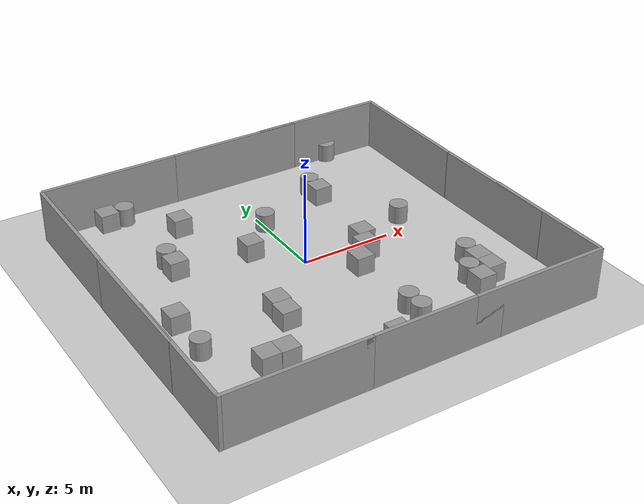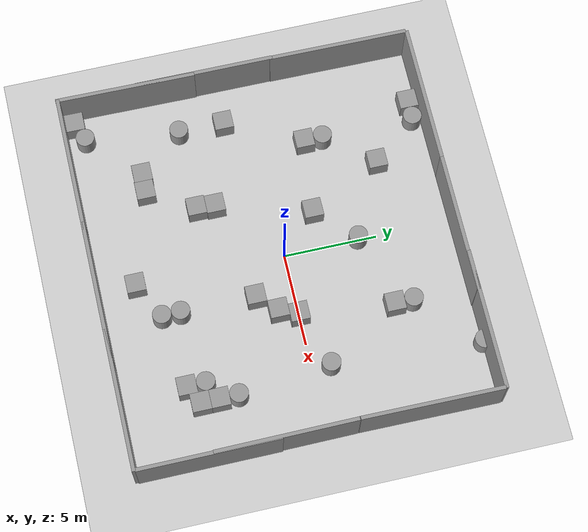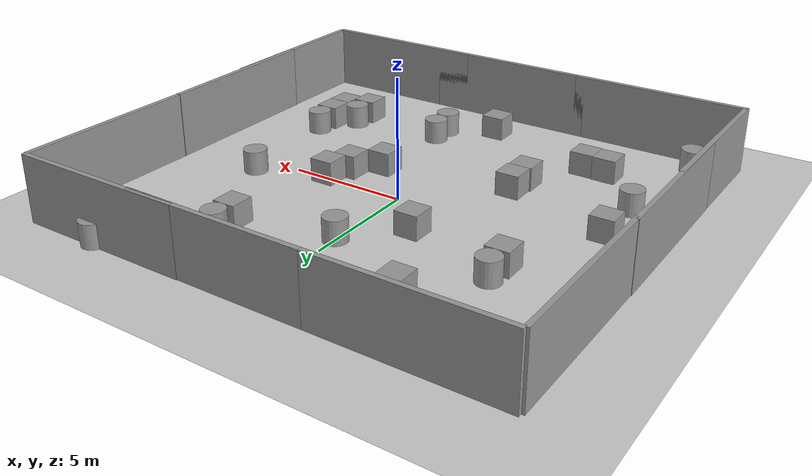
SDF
<sdf version="1.4">
 <world name="default">
  <light name="sun" type="directional">
   <pose>0 0 10 0 -0 0</pose>
   <diffuse>0.8 0.8 0.8 1</diffuse>
   <specular>0.2 0.2 0.2 1</specular>
   <attenuation>
    <range>1000</range>
    <constant>0.9</constant>
    <linear>0.01</linear>
    <quadratic>0.001</quadratic>
   </attenuation>
   <direction>-0.5 0.1 -0.9</direction>
  </light>
  <model name="ground_plane">
   <static>1</static>
   <link name="link">
    <collision name="collision">
     <geometry><plane><normal>0 0 1</normal><size>100 100</size></plane></geometry>
     <surface><friction><ode><mu>100</mu><mu2>50</mu2></ode></friction></surface>
    </collision>
    <visual name="visual">
     <cast_shadows>0</cast_shadows>
     <geometry><plane><normal>0 0 1</normal><size>100 100</size></plane></geometry>
     <material>
      <script><uri>file://media/materials/scripts/gazebo.material</uri><name>Gazebo/Grey</name></script>
     </material>
    </visual>
    <velocity_decay><linear>0</linear><angular>0</angular></velocity_decay>
   </link>
  </model>
  <physics type="ode">
   <max_step_size>0.01</max_step_size>
   <real_time_factor>1</real_time_factor>
   <real_time_update_rate>100</real_time_update_rate>
   <gravity>0 0 -9.8</gravity>
  </physics>
  <scene><ambient>0.4 0.4 0.4 1</ambient><background>0.7 0.7 0.7 1</background><shadows>1</shadows></scene>
  <spherical_coordinates>
   <surface_model>EARTH_WGS84</surface_model>
   <latitude_deg>0</latitude_deg>
   <longitude_deg>0</longitude_deg>
   <elevation>0</elevation>
   <heading_deg>0</heading_deg>
  </spherical_coordinates>
  <model name="grey_wall">
   <static>1</static>
   <link name="link">
    <pose>0 0 1.4 0 -0 0</pose>
    <collision name="collision"><geometry><box><size>7.5 0.2 2.8</size></box></geometry></collision>
    <visual name="visual">
     <cast_shadows>0</cast_shadows>
     <geometry><box><size>7.5 0.2 2.8</size></box></geometry>
     <material>
      <script>
       <uri>model://grey_wall/materials/scripts</uri>
       <uri>model://grey_wall/materials/textures</uri>
       <name>vrc/grey_wall</name>
      </script>
     </material>
    </visual>
    <velocity_decay><linear>0</linear><angular>0</angular></velocity_decay>
   </link>
   <pose>-6.37486 9.06322 0 0 -0 0</pose>
  </model>
  <model name="grey_wall_0">
   <static>1</static>
   <link name="link">
    <pose>0 0 1.4 0 -0 0</pose>
    <collision name="collision"><geometry><box><size>7.5 0.2 2.8</size></box></geometry></collision>
    <visual name="visual">
     <cast_shadows>0</cast_shadows>
     <geometry><box><size>7.5 0.2 2.8</size></box></geometry>
     <material>
      <script>
       <uri>model://grey_wall/materials/scripts</uri>
       <uri>model://grey_wall/materials/textures</uri>
       <name>vrc/grey_wall</name>
      </script>
     </material>
    </visual>
    <velocity_decay><linear>0</linear><angular>0</angular></velocity_decay>
   </link>
   <pose>1.12463 9.06218 0 0 -0 0</pose>
  </model>
  <model name="grey_wall_1">
   <static>1</static>
   <link name="link">
    <pose>0 0 1.4 0 -0 0</pose>
    <collision name="collision"><geometry><box><size>7.5 0.2 2.8</size></box></geometry></collision>
    <visual name="visual">
     <cast_shadows>0</cast_shadows>
     <geometry><box><size>7.5 0.2 2.8</size></box></geometry>
     <material>
      <script>
       <uri>model://grey_wall/materials/scripts</uri>
       <uri>model://grey_wall/materials/textures</uri>
       <name>vrc/grey_wall</name>
      </script>
     </material>
    </visual>
    <velocity_decay><linear>0</linear><angular>0</angular></velocity_decay>
   </link>
   <pose>6.47505 9.08721 0 0 -0 0</pose>
  </model>
  <model name="grey_wall_2">
   <static>1</static>
   <link name="link">
    <pose>0 0 1.4 0 -0 0</pose>
    <collision name="collision"><geometry><box><size>7.5 0.2 2.8</size></box></geometry></collision>
    <visual name="visual">
     <cast_shadows>0</cast_shadows>
     <geometry><box><size>7.5 0.2 2.8</size></box></geometry>
     <material>
      <script>
       <uri>model://grey_wall/materials/scripts</uri>
       <uri>model://grey_wall/materials/textures</uri>
       <name>vrc/grey_wall</name>
      </script>
     </material>
    </visual>
    <velocity_decay><linear>0</linear><angular>0</angular></velocity_decay>
   </link>
   <pose>-6.57172 -10 0 0 -0 0</pose>
  </model>
  <model name="grey_wall_3">
   <static>1</static>
   <link name="link">
    <pose>0 0 1.4 0 -0 0</pose>
    <collision name="collision"><geometry><box><size>7.5 0.2 2.8</size></box></geometry></collision>
    <visual name="visual">
     <cast_shadows>0</cast_shadows>
     <geometry><box><size>7.5 0.2 2.8</size></box></geometry>
     <material>
      <script>
       <uri>model://grey_wall/materials/scripts</uri>
       <uri>model://grey_wall/materials/textures</uri>
       <name>vrc/grey_wall</name>
      </script>
     </material>
    </visual>
    <velocity_decay><linear>0</linear><angular>0</angular></velocity_decay>
   </link>
   <pose>0.502464 -10 0 0 -0 0</pose>
  </model>
  <model name="grey_wall_4">
   <static>1</static>
   <link name="link">
    <pose>0 0 1.4 0 -0 0</pose>
    <collision name="collision"><geometry><box><size>7.5 0.2 2.8</size></box></geometry></collision>
    <visual name="visual">
     <cast_shadows>0</cast_shadows>
     <geometry><box><size>7.5 0.2 2.8</size></box></geometry>
     <material>
      <script>
       <uri>model://grey_wall/materials/scripts</uri>
       <uri>model://grey_wall/materials/textures</uri>
       <name>vrc/grey_wall</name>
      </script>
     </material>
    </visual>
    <velocity_decay><linear>0</linear><angular>0</angular></velocity_decay>
   </link>
   <pose>6.46119 -10 0 0 -0 0</pose>
  </model>
  <model name="grey_wall_5">
   <static>1</static>
   <link name="link">
    <pose>0 0 1.4 0 -0 0</pose>
    <collision name="collision"><geometry><box><size>7.5 0.2 2.8</size></box></geometry></collision>
    <visual name="visual">
     <cast_shadows>0</cast_shadows>
     <geometry><box><size>7.5 0.2 2.8</size></box></geometry>
     <material>
      <script>
       <uri>model://grey_wall/materials/scripts</uri>
       <uri>model://grey_wall/materials/textures</uri>
       <name>vrc/grey_wall</name>
      </script>
     </material>
    </visual>
    <velocity_decay><linear>0</linear><angular>0</angular></velocity_decay>
   </link>
   <pose>10.1266 5.31585 0 0 0 -1.58058</pose>
  </model>
  <model name="grey_wall_6">
   <static>1</static>
   <link name="link">
    <pose>0 0 1.4 0 -0 0</pose>
    <collision name="collision"><geometry><box><size>7.5 0.2 2.8</size></box></geometry></collision>
    <visual name="visual">
     <cast_shadows>0</cast_shadows>
     <geometry><box><size>7.5 0.2 2.8</size></box></geometry>
     <material>
      <script>
       <uri>model://grey_wall/materials/scripts</uri>
       <uri>model://grey_wall/materials/textures</uri>
       <name>vrc/grey_wall</name>
      </script>
     </material>
    </visual>
    <velocity_decay><linear>0</linear><angular>0</angular></velocity_decay>
   </link>
   <pose>10.1134 -2.21796 0 0 0 -1.566</pose>
  </model>
  <model name="grey_wall_7">
   <static>1</static>
   <link name="link">
    <pose>0 0 1.4 0 -0 0</pose>
    <collision name="collision"><geometry><box><size>7.5 0.2 2.8</size></box></geometry></collision>
    <visual name="visual">
     <cast_shadows>0</cast_shadows>
     <geometry><box><size>7.5 0.2 2.8</size></box></geometry>
     <material>
      <script>
       <uri>model://grey_wall/materials/scripts</uri>
       <uri>model://grey_wall/materials/textures</uri>
       <name>vrc/grey_wall</name>
      </script>
     </material>
    </visual>
    <velocity_decay><linear>0</linear><angular>0</angular></velocity_decay>
   </link>
   <pose>10.161 -6.18012 0 0 -0 1.5699</pose>
  </model>
  <model name="grey_wall_8">
   <static>1</static>
   <link name="link">
    <pose>0 0 1.4 0 -0 0</pose>
    <collision name="collision"><geometry><box><size>7.5 0.2 2.8</size></box></geometry></collision>
    <visual name="visual">
     <cast_shadows>0</cast_shadows>
     <geometry><box><size>7.5 0.2 2.8</size></box></geometry>
     <material>
      <script>
       <uri>model://grey_wall/materials/scripts</uri>
       <uri>model://grey_wall/materials/textures</uri>
       <name>vrc/grey_wall</name>
      </script>
     </material>
    </visual>
    <velocity_decay><linear>0</linear><angular>0</angular></velocity_decay>
   </link>
   <pose>-10.1642 5.26629 0 0 0 -1.57839</pose>
  </model>
  <model name="grey_wall_9">
   <static>1</static>
   <link name="link">
    <pose>0 0 1.4 0 -0 0</pose>
    <collision name="collision"><geometry><box><size>7.5 0.2 2.8</size></box></geometry></collision>
    <visual name="visual">
     <cast_shadows>0</cast_shadows>
     <geometry><box><size>7.5 0.2 2.8</size></box></geometry>
     <material>
      <script>
       <uri>model://grey_wall/materials/scripts</uri>
       <uri>model://grey_wall/materials/textures</uri>
       <name>vrc/grey_wall</name>
      </script>
     </material>
    </visual>
    <velocity_decay><linear>0</linear><angular>0</angular></velocity_decay>
   </link>
   <pose>-10.2248 -2.07732 0 0 0 -1.57362</pose>
  </model>
  <model name="grey_wall_10">
   <static>1</static>
   <link name="link">
    <pose>0 0 1.4 0 -0 0</pose>
    <collision name="collision"><geometry><box><size>7.5 0.2 2.8</size></box></geometry></collision>
    <visual name="visual">
     <cast_shadows>0</cast_shadows>
     <geometry><box><size>7.5 0.2 2.8</size></box></geometry>
     <material>
      <script>
       <uri>model://grey_wall/materials/scripts</uri>
       <uri>model://grey_wall/materials/textures</uri>
       <name>vrc/grey_wall</name>
      </script>
     </material>
    </visual>
    <velocity_decay><linear>0</linear><angular>0</angular></velocity_decay>
   </link>
   <pose>-10.2268 -6.36026 -0 0 0 -1.58184</pose>
  </model>
  <model name="unit_box_1">
   <pose>-7 8.45126 0.5 0 -0 0</pose>
   <link name="link">
    <inertial>
     <mass>1</mass>
     <inertia><ixx>1</ixx><ixy>0</ixy><ixz>0</ixz><iyy>1</iyy><iyz>0</iyz><izz>1</izz></inertia>
    </inertial>
    <collision name="collision"><geometry><box><size>1 1 1</size></box></geometry></collision>
    <visual name="visual">
     <geometry><box><size>1 1 1</size></box></geometry>
     <material>
      <script><uri>file://media/materials/scripts/gazebo.material</uri><name>Gazebo/Grey</name></script>
     </material>
    </visual>
    <velocity_decay><linear>0</linear><angular>0</angular></velocity_decay>
   </link>
   <static>0</static>
  </model>
  <model name="unit_box_2">
   <pose>4 5 0.5 0 -0 2e-06</pose>
   <link name="link">
    <inertial>
     <mass>1</mass>
     <inertia><ixx>1</ixx><ixy>0</ixy><ixz>0</ixz><iyy>1</iyy><iyz>0</iyz><izz>1</izz></inertia>
    </inertial>
    <collision name="collision"><geometry><box><size>1 1 1</size></box></geometry></collision>
    <visual name="visual">
     <geometry><box><size>1 1 1</size></box></geometry>
     <material>
      <script><uri>file://media/materials/scripts/gazebo.material</uri><name>Gazebo/Grey</name></script>
     </material>
    </visual>
    <velocity_decay><linear>0</linear><angular>0</angular></velocity_decay>
   </link>
   <static>0</static>
  </model>
  <model name="unit_box_1_0">
   <pose>-2 2 0.5 0 -0 0</pose>
   <link name="link">
    <inertial>
     <mass>1</mass>
     <inertia><ixx>1</ixx><ixy>0</ixy><ixz>0</ixz><iyy>1</iyy><iyz>0</iyz><izz>1</izz></inertia>
    </inertial>
    <collision name="collision"><geometry><box><size>1 1 1</size></box></geometry></collision>
    <visual name="visual">
     <geometry><box><size>1 1 1</size></box></geometry>
     <material>
      <script><uri>file://media/materials/scripts/gazebo.material</uri><name>Gazebo/Grey</name></script>
     </material>
    </visual>
    <velocity_decay><linear>0</linear><angular>0</angular></velocity_decay>
   </link>
   <static>0</static>
  </model>
  <model name="unit_box_2_0">
   <pose>-6 -6.42643 0.5 0 -0 0</pose>
   <link name="link">
    <inertial>
     <mass>1</mass>
     <inertia><ixx>1</ixx><ixy>0</ixy><ixz>0</ixz><iyy>1</iyy><iyz>0</iyz><izz>1</izz></inertia>
    </inertial>
    <collision name="collision"><geometry><box><size>1 1 1</size></box></geometry></collision>
    <visual name="visual">
     <geometry><box><size>1 1 1</size></box></geometry>
     <material>
      <script><uri>file://media/materials/scripts/gazebo.material</uri><name>Gazebo/Grey</name></script>
     </material>
    </visual>
    <velocity_decay><linear>0</linear><angular>0</angular></velocity_decay>
   </link>
   <static>0</static>
  </model>
  <model name="unit_box_3">
   <pose>7 -5 0.49757 -0 -0 -1e-06</pose>
   <link name="link">
    <inertial>
     <mass>1</mass>
     <inertia><ixx>1</ixx><ixy>0</ixy><ixz>0</ixz><iyy>1</iyy><iyz>0</iyz><izz>1</izz></inertia>
    </inertial>
    <collision name="collision"><geometry><box><size>1 1 1</size></box></geometry></collision>
    <visual name="visual">
     <geometry><box><size>1 1 1</size></box></geometry>
     <material>
      <script><uri>file://media/materials/scripts/gazebo.material</uri><name>Gazebo/Grey</name></script>
     </material>
    </visual>
    <velocity_decay><linear>0</linear><angular>0</angular></velocity_decay>
   </link>
   <static>0</static>
  </model>
  <model name="unit_cylinder_1">
   <pose>5.99999 -5.52641 0.499998 0 -0 -1e-06</pose>
   <link name="link">
    <inertial>
     <mass>1</mass>
     <inertia><ixx>1</ixx><ixy>0</ixy><ixz>0</ixz><iyy>1</iyy><iyz>0</iyz><izz>1</izz></inertia>
    </inertial>
    <collision name="collision">
     <geometry><cylinder><radius>0.5</radius><length>1</length></cylinder></geometry>
    </collision>
    <visual name="visual">
     <geometry><cylinder><radius>0.5</radius><length>1</length></cylinder></geometry>
     <material>
      <script><uri>file://media/materials/scripts/gazebo.material</uri><name>Gazebo/Grey</name></script>
     </material>
    </visual>
    <velocity_decay><linear>0</linear><angular>0</angular></velocity_decay>
   </link>
   <static>0</static>
  </model>
  <model name="unit_box_4">
   <pose>7 -6 0.5 0 -0 2e-06</pose>
   <link name="link">
    <inertial>
     <mass>1</mass>
     <inertia><ixx>1</ixx><ixy>0</ixy><ixz>0</ixz><iyy>1</iyy><iyz>0</iyz><izz>1</izz></inertia>
    </inertial>
    <collision name="collision"><geometry><box><size>1 1 1</size></box></geometry></collision>
    <visual name="visual">
     <geometry><box><size>1 1 1</size></box></geometry>
     <material>
      <script><uri>file://media/materials/scripts/gazebo.material</uri><name>Gazebo/Grey</name></script>
     </material>
    </visual>
    <velocity_decay><linear>0</linear><angular>0</angular></velocity_decay>
   </link>
   <static>0</static>
  </model>
  <model name="unit_box_5">
   <pose>6 -6.52642 0.5 0 -0 2e-06</pose>
   <link name="link">
    <inertial>
     <mass>1</mass>
     <inertia><ixx>1</ixx><ixy>0</ixy><ixz>0</ixz><iyy>1</iyy><iyz>0</iyz><izz>1</izz></inertia>
    </inertial>
    <collision name="collision"><geometry><box><size>1 1 1</size></box></geometry></collision>
    <visual name="visual">
     <geometry><box><size>1 1 1</size></box></geometry>
     <material>
      <script><uri>file://media/materials/scripts/gazebo.material</uri><name>Gazebo/Grey</name></script>
     </material>
    </visual>
    <velocity_decay><linear>0</linear><angular>0</angular></velocity_decay>
   </link>
   <static>0</static>
  </model>
  <model name="unit_cylinder_2">
   <pose>2 -7 0.499994 -1e-06 1e-06 0</pose>
   <link name="link">
    <inertial>
     <mass>1</mass>
     <inertia><ixx>1</ixx><ixy>0</ixy><ixz>0</ixz><iyy>1</iyy><iyz>0</iyz><izz>1</izz></inertia>
    </inertial>
    <collision name="collision">
     <geometry><cylinder><radius>0.5</radius><length>1</length></cylinder></geometry>
    </collision>
    <visual name="visual">
     <geometry><cylinder><radius>0.5</radius><length>1</length></cylinder></geometry>
     <material>
      <script><uri>file://media/materials/scripts/gazebo.material</uri><name>Gazebo/Grey</name></script>
     </material>
    </visual>
    <velocity_decay><linear>0</linear><angular>0</angular></velocity_decay>
   </link>
   <static>0</static>
  </model>
  <model name="unit_cylinder_3">
   <pose>6.44555 1 0.499995 0 -0 0</pose>
   <link name="link">
    <inertial>
     <mass>1</mass>
     <inertia><ixx>1</ixx><ixy>0</ixy><ixz>0</ixz><iyy>1</iyy><iyz>0</iyz><izz>1</izz></inertia>
    </inertial>
    <collision name="collision">
     <geometry><cylinder><radius>0.5</radius><length>1</length></cylinder></geometry>
    </collision>
    <visual name="visual">
     <geometry><cylinder><radius>0.5</radius><length>1</length></cylinder></geometry>
     <material>
      <script><uri>file://media/materials/scripts/gazebo.material</uri><name>Gazebo/Grey</name></script>
     </material>
    </visual>
    <velocity_decay><linear>0</linear><angular>0</angular></velocity_decay>
   </link>
   <static>0</static>
  </model>
  <model name="unit_cylinder_4">
   <pose>0 4 0.499996 1e-06 -1e-06 0</pose>
   <link name="link">
    <inertial>
     <mass>1</mass>
     <inertia><ixx>1</ixx><ixy>0</ixy><ixz>0</ixz><iyy>1</iyy><iyz>0</iyz><izz>1</izz></inertia>
    </inertial>
    <collision name="collision">
     <geometry><cylinder><radius>0.5</radius><length>1</length></cylinder></geometry>
    </collision>
    <visual name="visual">
     <geometry><cylinder><radius>0.5</radius><length>1</length></cylinder></geometry>
     <material>
      <script><uri>file://media/materials/scripts/gazebo.material</uri><name>Gazebo/Grey</name></script>
     </material>
    </visual>
    <velocity_decay><linear>0</linear><angular>0</angular></velocity_decay>
   </link>
   <static>0</static>
  </model>
  <model name="unit_box_6">
   <pose>-3.43088 -3 0.5 0 -0 0</pose>
   <link name="link">
    <inertial>
     <mass>1</mass>
     <inertia><ixx>1</ixx><ixy>0</ixy><ixz>0</ixz><iyy>1</iyy><iyz>0</iyz><izz>1</izz></inertia>
    </inertial>
    <collision name="collision"><geometry><box><size>1 1 1</size></box></geometry></collision>
    <visual name="visual">
     <geometry><box><size>1 1 1</size></box></geometry>
     <material>
      <script><uri>file://media/materials/scripts/gazebo.material</uri><name>Gazebo/Grey</name></script>
     </material>
    </visual>
    <velocity_decay><linear>0</linear><angular>0</angular></velocity_decay>
   </link>
   <static>0</static>
  </model>
  <model name="unit_box_7">
   <pose>-9.65855 -9.39624 0.5 0 0 -0.007546</pose>
   <link name="link">
    <inertial>
     <mass>1</mass>
     <inertia><ixx>1</ixx><ixy>0</ixy><ixz>0</ixz><iyy>1</iyy><iyz>0</iyz><izz>1</izz></inertia>
    </inertial>
    <collision name="collision"><geometry><box><size>1 1 1</size></box></geometry></collision>
    <visual name="visual">
     <geometry><box><size>1 1 1</size></box></geometry>
     <material>
      <script><uri>file://media/materials/scripts/gazebo.material</uri><name>Gazebo/Grey</name></script>
     </material>
    </visual>
    <velocity_decay><linear>0</linear><angular>0</angular></velocity_decay>
   </link>
   <static>0</static>
  </model>
  <model name="unit_cylinder_5">
   <pose>-8.65243 -9.00172 0.499994 1e-06 -1e-06 -0.000389</pose>
   <link name="link">
    <inertial>
     <mass>1</mass>
     <inertia><ixx>1</ixx><ixy>0</ixy><ixz>0</ixz><iyy>1</iyy><iyz>0</iyz><izz>1</izz></inertia>
    </inertial>
    <collision name="collision">
     <geometry><cylinder><radius>0.5</radius><length>1</length></cylinder></geometry>
    </collision>
    <visual name="visual">
     <geometry><cylinder><radius>0.5</radius><length>1</length></cylinder></geometry>
     <material>
      <script><uri>file://media/materials/scripts/gazebo.material</uri><name>Gazebo/Grey</name></script>
     </material>
    </visual>
    <velocity_decay><linear>0</linear><angular>0</angular></velocity_decay>
   </link>
   <static>0</static>
  </model>
  <model name="unit_box_8">
   <pose>3.41973 0 0.5 0 -0 0</pose>
   <link name="link">
    <inertial>
     <mass>1</mass>
     <inertia><ixx>1</ixx><ixy>0</ixy><ixz>0</ixz><iyy>1</iyy><iyz>0</iyz><izz>1</izz></inertia>
    </inertial>
    <collision name="collision"><geometry><box><size>1 1 1</size></box></geometry></collision>
    <visual name="visual">
     <geometry><box><size>1 1 1</size></box></geometry>
     <material>
      <script><uri>file://media/materials/scripts/gazebo.material</uri><name>Gazebo/Grey</name></script>
     </material>
    </visual>
    <velocity_decay><linear>0</linear><angular>0</angular></velocity_decay>
   </link>
   <static>0</static>
  </model>
  <model name="unit_cylinder_6">
   <pose>4 6 0.499995 0 -0 0</pose>
   <link name="link">
    <inertial>
     <mass>1</mass>
     <inertia><ixx>1</ixx><ixy>0</ixy><ixz>0</ixz><iyy>1</iyy><iyz>0</iyz><izz>1</izz></inertia>
    </inertial>
    <collision name="collision">
     <geometry><cylinder><radius>0.5</radius><length>1</length></cylinder></geometry>
    </collision>
    <visual name="visual">
     <geometry><cylinder><radius>0.5</radius><length>1</length></cylinder></geometry>
     <material>
      <script><uri>file://media/materials/scripts/gazebo.material</uri><name>Gazebo/Grey</name></script>
     </material>
    </visual>
    <velocity_decay><linear>0</linear><angular>0</angular></velocity_decay>
   </link>
   <static>0</static>
  </model>
  <model name="unit_cylinder_7">
   <pose>7 9 0.499998 0 -0 0</pose>
   <link name="link">
    <inertial>
     <mass>1</mass>
     <inertia><ixx>1</ixx><ixy>0</ixy><ixz>0</ixz><iyy>1</iyy><iyz>0</iyz><izz>1</izz></inertia>
    </inertial>
    <collision name="collision">
     <geometry><cylinder><radius>0.5</radius><length>1</length></cylinder></geometry>
    </collision>
    <visual name="visual">
     <geometry><cylinder><radius>0.5</radius><length>1</length></cylinder></geometry>
     <material>
      <script><uri>file://media/materials/scripts/gazebo.material</uri><name>Gazebo/Grey</name></script>
     </material>
    </visual>
    <velocity_decay><linear>0</linear><angular>0</angular></velocity_decay>
   </link>
   <static>0</static>
  </model>
  <model name="unit_box_1_1">
   <pose>-6 2.47064 0.5 0 -0 0</pose>
   <link name="link">
    <inertial>
     <mass>1</mass>
     <inertia><ixx>1</ixx><ixy>0</ixy><ixz>0</ixz><iyy>1</iyy><iyz>0</iyz><izz>1</izz></inertia>
    </inertial>
    <collision name="collision"><geometry><box><size>1 1 1</size></box></geometry></collision>
    <visual name="visual">
     <geometry><box><size>1 1 1</size></box></geometry>
     <material>
      <script><uri>file://media/materials/scripts/gazebo.material</uri><name>Gazebo/Grey</name></script>
     </material>
    </visual>
    <velocity_decay><linear>0</linear><angular>0</angular></velocity_decay>
   </link>
   <static>0</static>
  </model>
  <model name="unit_box_2_1">
   <pose>3 -1 0.5 0 -0 0</pose>
   <link name="link">
    <inertial>
     <mass>1</mass>
     <inertia><ixx>1</ixx><ixy>0</ixy><ixz>0</ixz><iyy>1</iyy><iyz>0</iyz><izz>1</izz></inertia>
    </inertial>
    <collision name="collision"><geometry><box><size>1 1 1</size></box></geometry></collision>
    <visual name="visual">
     <geometry><box><size>1 1 1</size></box></geometry>
     <material>
      <script><uri>file://media/materials/scripts/gazebo.material</uri><name>Gazebo/Grey</name></script>
     </material>
    </visual>
    <velocity_decay><linear>0</linear><angular>0</angular></velocity_decay>
   </link>
   <static>0</static>
  </model>
  <model name="unit_box_3_0">
   <pose>-3.50127 -4 0.5 0 -0 0</pose>
   <link name="link">
    <inertial>
     <mass>1</mass>
     <inertia><ixx>1</ixx><ixy>0</ixy><ixz>0</ixz><iyy>1</iyy><iyz>0</iyz><izz>1</izz></inertia>
    </inertial>
    <collision name="collision"><geometry><box><size>1 1 1</size></box></geometry></collision>
    <visual name="visual">
     <geometry><box><size>1 1 1</size></box></geometry>
     <material>
      <script><uri>file://media/materials/scripts/gazebo.material</uri><name>Gazebo/Grey</name></script>
     </material>
    </visual>
    <velocity_decay><linear>0</linear><angular>0</angular></velocity_decay>
   </link>
   <static>0</static>
  </model>
  <model name="unit_box_4_0">
   <pose>-5 -6.46049 0.5 0 -0 0</pose>
   <link name="link">
    <inertial>
     <mass>1</mass>
     <inertia><ixx>1</ixx><ixy>0</ixy><ixz>0</ixz><iyy>1</iyy><iyz>0</iyz><izz>1</izz></inertia>
    </inertial>
    <collision name="collision"><geometry><box><size>1 1 1</size></box></geometry></collision>
    <visual name="visual">
     <geometry><box><size>1 1 1</size></box></geometry>
     <material>
      <script><uri>file://media/materials/scripts/gazebo.material</uri><name>Gazebo/Grey</name></script>
     </material>
    </visual>
    <velocity_decay><linear>0</linear><angular>0</angular></velocity_decay>
   </link>
   <static>0</static>
  </model>
  <model name="unit_cylinder_1_0">
   <pose>2 -6 0.499991 0 -0 0</pose>
   <link name="link">
    <inertial>
     <mass>1</mass>
     <inertia><ixx>1</ixx><ixy>0</ixy><ixz>0</ixz><iyy>1</iyy><iyz>0</iyz><izz>1</izz></inertia>
    </inertial>
    <collision name="collision">
     <geometry><cylinder><radius>0.5</radius><length>1</length></cylinder></geometry>
    </collision>
    <visual name="visual">
     <geometry><cylinder><radius>0.5</radius><length>1</length></cylinder></geometry>
     <material>
      <script><uri>file://media/materials/scripts/gazebo.material</uri><name>Gazebo/Grey</name></script>
     </material>
    </visual>
    <velocity_decay><linear>0</linear><angular>0</angular></velocity_decay>
   </link>
   <static>0</static>
  </model>
  <model name="unit_cylinder_2_0">
   <pose>-6 3.47555 0.499998 1e-06 -0 0</pose>
   <link name="link">
    <inertial>
     <mass>1</mass>
     <inertia><ixx>1</ixx><ixy>0</ixy><ixz>0</ixz><iyy>1</iyy><iyz>0</iyz><izz>1</izz></inertia>
    </inertial>
    <collision name="collision">
     <geometry><cylinder><radius>0.5</radius><length>1</length></cylinder></geometry>
    </collision>
    <visual name="visual">
     <geometry><cylinder><radius>0.5</radius><length>1</length></cylinder></geometry>
     <material>
      <script><uri>file://media/materials/scripts/gazebo.material</uri><name>Gazebo/Grey</name></script>
     </material>
    </visual>
    <velocity_decay><linear>0</linear><angular>0</angular></velocity_decay>
   </link>
   <static>0</static>
  </model>
  <model name="unit_cylinder_3_0">
   <pose>-6 8.46322 0.5 0 -0 0</pose>
   <link name="link">
    <inertial>
     <mass>1</mass>
     <inertia><ixx>1</ixx><ixy>0</ixy><ixz>0</ixz><iyy>1</iyy><iyz>0</iyz><izz>1</izz></inertia>
    </inertial>
    <collision name="collision">
     <geometry><cylinder><radius>0.5</radius><length>1</length></cylinder></geometry>
    </collision>
    <visual name="visual">
     <geometry><cylinder><radius>0.5</radius><length>1</length></cylinder></geometry>
     <material>
      <script><uri>file://media/materials/scripts/gazebo.material</uri><name>Gazebo/Grey</name></script>
     </material>
    </visual>
    <velocity_decay><linear>0</linear><angular>0</angular></velocity_decay>
   </link>
   <static>0</static>
  </model>
  <model name="unit_box_5_0">
   <pose>-4 6 0.5 0 -0 0</pose>
   <link name="link">
    <inertial>
     <mass>1</mass>
     <inertia><ixx>1</ixx><ixy>0</ixy><ixz>0</ixz><iyy>1</iyy><iyz>0</iyz><izz>1</izz></inertia>
    </inertial>
    <collision name="collision"><geometry><box><size>1 1 1</size></box></geometry></collision>
    <visual name="visual">
     <geometry><box><size>1 1 1</size></box></geometry>
     <material>
      <script><uri>file://media/materials/scripts/gazebo.material</uri><name>Gazebo/Grey</name></script>
     </material>
    </visual>
    <velocity_decay><linear>0</linear><angular>0</angular></velocity_decay>
   </link>
   <static>0</static>
  </model>
  <model name="unit_box_6_0">
   <pose>-0 -8 0.5 0 -0 0</pose>
   <link name="link">
    <inertial>
     <mass>1</mass>
     <inertia><ixx>1</ixx><ixy>0</ixy><ixz>0</ixz><iyy>1</iyy><iyz>0</iyz><izz>1</izz></inertia>
    </inertial>
    <collision name="collision"><geometry><box><size>1 1 1</size></box></geometry></collision>
    <visual name="visual">
     <geometry><box><size>1 1 1</size></box></geometry>
     <material>
      <script><uri>file://media/materials/scripts/gazebo.material</uri><name>Gazebo/Grey</name></script>
     </material>
    </visual>
    <velocity_decay><linear>0</linear><angular>0</angular></velocity_decay>
   </link>
   <static>0</static>
  </model>
  <model name="unit_box_7_0">
   <pose>-8 -1.56129 0.5 0 -0 0</pose>
   <link name="link">
    <inertial>
     <mass>1</mass>
     <inertia><ixx>1</ixx><ixy>0</ixy><ixz>0</ixz><iyy>1</iyy><iyz>0</iyz><izz>1</izz></inertia>
    </inertial>
    <collision name="collision"><geometry><box><size>1 1 1</size></box></geometry></collision>
    <visual name="visual">
     <geometry><box><size>1 1 1</size></box></geometry>
     <material>
      <script><uri>file://media/materials/scripts/gazebo.material</uri><name>Gazebo/Grey</name></script>
     </material>
    </visual>
    <velocity_decay><linear>0</linear><angular>0</angular></velocity_decay>
   </link>
   <static>0</static>
  </model>
  <model name="unit_cylinder_4_0">
   <pose>-8 -4 0.499992 0 -0 0</pose>
   <link name="link">
    <inertial>
     <mass>1</mass>
     <inertia><ixx>1</ixx><ixy>0</ixy><ixz>0</ixz><iyy>1</iyy><iyz>0</iyz><izz>1</izz></inertia>
    </inertial>
    <collision name="collision">
     <geometry><cylinder><radius>0.5</radius><length>1</length></cylinder></geometry>
    </collision>
    <visual name="visual">
     <geometry><cylinder><radius>0.5</radius><length>1</length></cylinder></geometry>
     <material>
      <script><uri>file://media/materials/scripts/gazebo.material</uri><name>Gazebo/Grey</name></script>
     </material>
    </visual>
    <velocity_decay><linear>0</linear><angular>0</angular></velocity_decay>
   </link>
   <static>0</static>
  </model>
  <model name="unit_cylinder_5_0">
   <pose>7 -4 0.499994 0 -0 0</pose>
   <link name="link">
    <inertial>
     <mass>1</mass>
     <inertia><ixx>1</ixx><ixy>0</ixy><ixz>0</ixz><iyy>1</iyy><iyz>0</iyz><izz>1</izz></inertia>
    </inertial>
    <collision name="collision">
     <geometry><cylinder><radius>0.5</radius><length>1</length></cylinder></geometry>
    </collision>
    <visual name="visual">
     <geometry><cylinder><radius>0.5</radius><length>1</length></cylinder></geometry>
     <material>
      <script><uri>file://media/materials/scripts/gazebo.material</uri><name>Gazebo/Grey</name></script>
     </material>
    </visual>
    <velocity_decay><linear>0</linear><angular>0</angular></velocity_decay>
   </link>
   <static>0</static>
  </model>
  <model name="unit_box_8_0">
   <pose>2 -2 0.5 0 -0 0</pose>
   <link name="link">
    <inertial>
     <mass>1</mass>
     <inertia><ixx>1</ixx><ixy>0</ixy><ixz>0</ixz><iyy>1</iyy><iyz>0</iyz><izz>1</izz></inertia>
    </inertial>
    <collision name="collision"><geometry><box><size>1 1 1</size></box></geometry></collision>
    <visual name="visual">
     <geometry><box><size>1 1 1</size></box></geometry>
     <material>
      <script><uri>file://media/materials/scripts/gazebo.material</uri><name>Gazebo/Grey</name></script>
     </material>
    </visual>
    <velocity_decay><linear>0</linear><angular>0</angular></velocity_decay>
   </link>
   <static>0</static>
  </model>
 </world>
</sdf>
